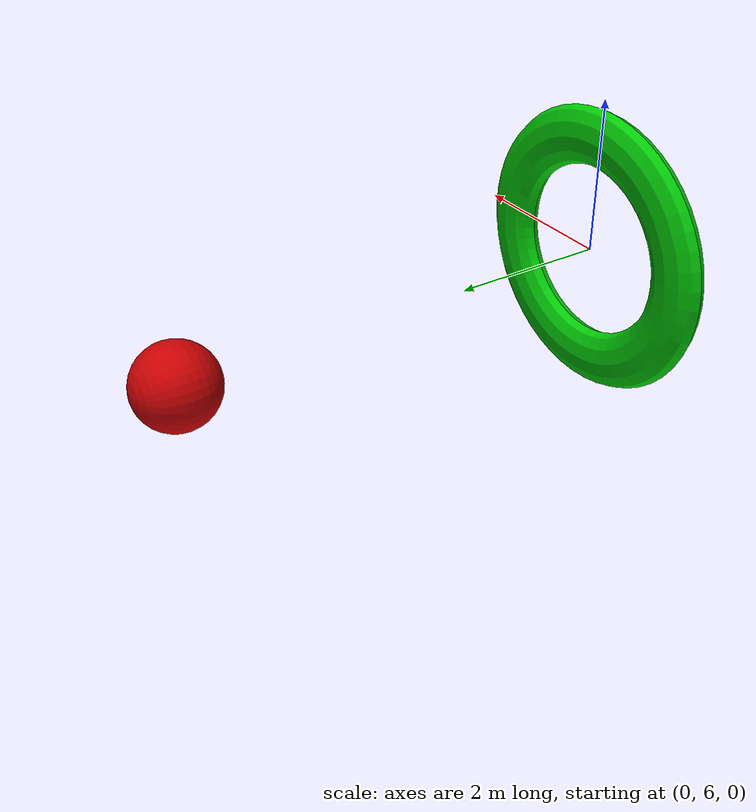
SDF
<?xml version="1.0"?>
<sdf version="1.6">
  <model name="ring">
    <static>true</static>

    <link name="link">

      <!-- VISUAL -->
      <visual name="ring_visual">
        <geometry>
          <mesh>
            <uri>model://ring/meshes/ring.dae</uri>
            <scale>1 1 1</scale>
          </mesh>
        </geometry>
      </visual>

      <!-- COLLISION -->
      <collision name="ring_collision">
        <geometry>
          <mesh>
            <uri>model://ring/meshes/ring.dae</uri>
            <scale>1 1 1</scale>
          </mesh>
        </geometry>
      </collision>

    </link>
  </model>
</sdf>
